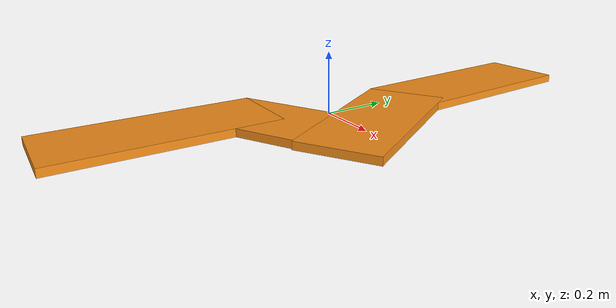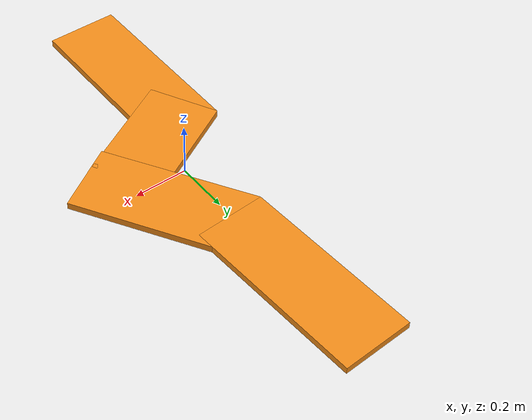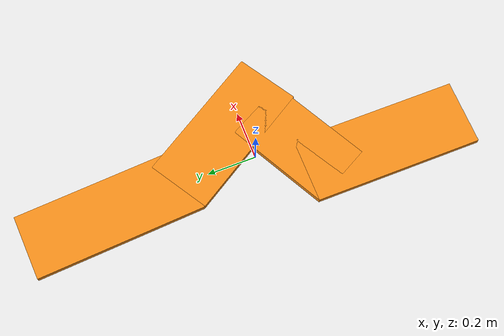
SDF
<?xml version='1.0'?>
<sdf version='1.6'>
  <model name='crooked_path'>

    <pose> 0 0 0 0 0 0 </pose>
    <static>1</static>
    <self_collide>0</self_collide>

    <link name='link_0'>
      <pose>-0.127533 -0.50937 0 0 -0 0</pose>
      <visual name='visual'>
        <pose>0 0 0 0 -0 0</pose>
        <geometry>
          <box>
            <size>0.266559 0.688207 0.026174</size>
          </box>
        </geometry>
        <material>
          <script>
            <uri>file://media/materials/scripts/gazebo.material</uri>
            <name>Gazebo/Orange</name>
          </script>
        </material>
      </visual>

      <collision name='collision'>
        <pose>0 0 0 0 -0 0</pose>
        <geometry>
          <box>
            <size>0.266559 0.688207 0.026174</size>
          </box>
        </geometry>
      </collision>
    </link>

    <link name='link_0_clone'>
      <pose>-0.005962 -0.180662 0.0 0 0 -1.08343</pose>

      <visual name='visual'>
        <pose>0 0 0 0 -0 0</pose>
        <geometry>
          <box>
            <size>0.266559 0.438116 0.026174</size>
          </box>
        </geometry>
        <material>
          <script>
            <uri>file://media/materials/scripts/gazebo.material</uri>
            <name>Gazebo/Orange</name>
          </script>
        </material>
      </visual>

      <collision name='collision'>
        <pose>0 0 0 0 0 0</pose>
        <geometry>
          <box>
            <size>0.266559 0.438116 0.026174</size>
          </box>
        </geometry>
      </collision>
    </link>

    <link name='link_0_clone_0'>
      <pose>-0.010162 0.611231 0.0 0 -0 0.056211</pose>

      <visual name='visual'>
        <pose frame=''>0 0 0 0 -0 0</pose>
        <geometry>
          <box>
            <size>0.266559 0.688207 0.026174</size>
          </box>
        </geometry>
        <material>
          <script>
            <uri>file://media/materials/scripts/gazebo.material</uri>
            <name>Gazebo/Orange</name>
          </script>
        </material>
      </visual>

      <collision name='collision'>
        <laser_retro>0</laser_retro>
        <max_contacts>10</max_contacts>
        <pose frame=''>0 0 0 0 -0 0</pose>
        <geometry>
          <box>
            <size>0.266559 0.688207 0.026174</size>
          </box>
        </geometry>
      </collision>
    </link>

    <link name='link_0_clone_clone'>
      <pose>0.143657 0.078805 0.0 0 -0 0.550351</pose>

      <visual name='visual'>
        <pose>0 0 0 0 -0 0</pose>
        <geometry>
          <box>
            <size>0.266559 0.583793 0.026174</size>
          </box>
        </geometry>
        <material>
          <script>
            <uri>file://media/materials/scripts/gazebo.material</uri>
            <name>Gazebo/Orange</name>
          </script>
        </material>
      </visual>

      <collision name='collision'>
        <pose>0 0 0 0 -0 0</pose>
        <geometry>
          <box>
            <size>0.266559 0.583793 0.026174</size>
          </box>
        </geometry>
      </collision>
    </link>

  </model>

</sdf>
